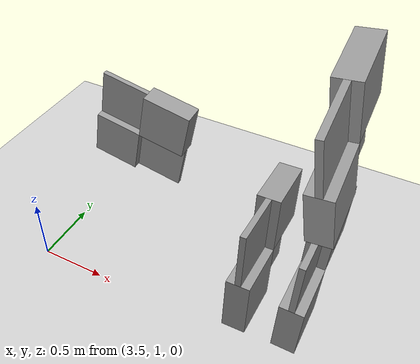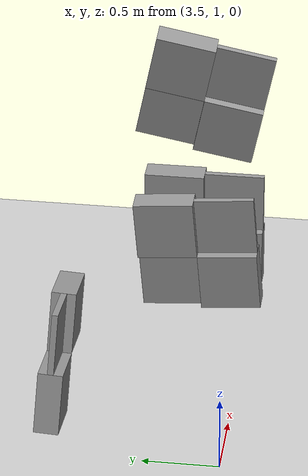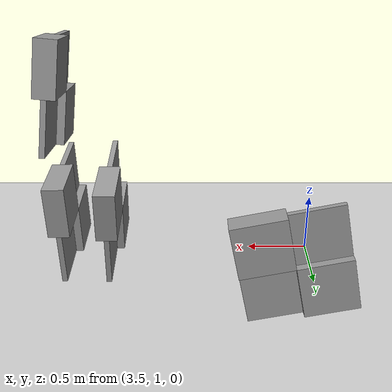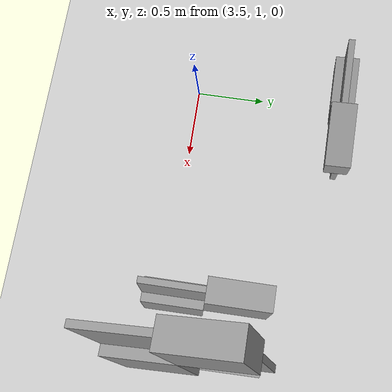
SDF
<sdf version="1.7">
 <world name="default">
  <model name="ground_plane">
   <static>1</static>
   <link name="link">
    <collision name="collision">
     <geometry><plane><normal>0 0 1</normal><size>100 100</size></plane></geometry>
     <surface>
      <contact><collide_bitmask>65535</collide_bitmask></contact>
      <friction><ode><mu>100</mu><mu2>50</mu2></ode></friction>
     </surface>
    </collision>
    <visual name="visual">
     <cast_shadows>0</cast_shadows>
     <geometry><plane><normal>0 0 1</normal><size>100 100</size></plane></geometry>
     <material>
      <script><uri>file://media/materials/scripts/gazebo.material</uri><name>Gazebo/Grey</name></script>
     </material>
    </visual>
   </link>
  </model>
  <model name="wall_slate_32">
   <static>1</static>
   <link name="link_0">
    <inertial><mass>1</mass></inertial>
    <gravity>0</gravity>
    <visual name="visual">
     <pose>0 0.2 0.2 0 -0 0</pose>
     <geometry><box><size>0.16 0.4 0.4</size></box></geometry>
     <material>
      <lighting>1</lighting>
      <script><uri>file://media/materials/scripts/gazebo.material</uri><name>Gazebo/Grey</name></script>
      <shader type="pixel"><normal_map>__default__</normal_map></shader>
      <ambient>0.3 0.3 0.3 1</ambient>
      <diffuse>0.7 0.7 0.7 1</diffuse>
      <specular>0.01 0.01 0.01 1</specular>
      <emissive>0 0 0 1</emissive>
     </material>
    </visual>
    <visual name="ModelPreview_0::link_0::visual_1">
     <pose>0 0.2 -0.2 0 -0 0</pose>
     <geometry><box><size>0.04 0.4 0.4</size></box></geometry>
     <material>
      <lighting>1</lighting>
      <script><uri>file://media/materials/scripts/gazebo.material</uri><name>Gazebo/Grey</name></script>
      <shader type="pixel"><normal_map>__default__</normal_map></shader>
      <ambient>0.3 0.3 0.3 1</ambient>
      <diffuse>0.7 0.7 0.7 1</diffuse>
      <specular>0.01 0.01 0.01 1</specular>
      <emissive>0 0 0 1</emissive>
     </material>
    </visual>
    <visual name="ModelPreview_0::link_0::visual_2">
     <pose>0 -0.2 0.2 0 -0 0</pose>
     <geometry><box><size>0.04 0.4 0.4</size></box></geometry>
     <material>
      <lighting>1</lighting>
      <script><uri>file://media/materials/scripts/gazebo.material</uri><name>Gazebo/Grey</name></script>
      <shader type="pixel"><normal_map>__default__</normal_map></shader>
      <ambient>0.3 0.3 0.3 1</ambient>
      <diffuse>0.7 0.7 0.7 1</diffuse>
      <specular>0.01 0.01 0.01 1</specular>
      <emissive>0 0 0 1</emissive>
     </material>
    </visual>
    <visual name="ModelPreview_0::link_0::visual_3">
     <pose>0 -0.2 -0.2 0 -0 0</pose>
     <geometry><box><size>0.16 0.4 0.4</size></box></geometry>
     <material>
      <lighting>1</lighting>
      <script><uri>file://media/materials/scripts/gazebo.material</uri><name>Gazebo/Grey</name></script>
      <shader type="pixel"><normal_map>__default__</normal_map></shader>
      <ambient>0.3 0.3 0.3 1</ambient>
      <diffuse>0.7 0.7 0.7 1</diffuse>
      <specular>0.01 0.01 0.01 1</specular>
      <emissive>0 0 0 1</emissive>
     </material>
    </visual>
    <collision name="collision_2">
     <pose>0 -0.2 0.2 0 -0 0</pose>
     <geometry><box><size>0.04 0.4 0.4</size></box></geometry>
     <surface>
      <friction>
       <ode><mu>1</mu><mu2>1</mu2><fdir1>0 0 0</fdir1><slip1>0</slip1><slip2>0</slip2></ode>
       <torsional>
        <coefficient>1</coefficient>
        <patch_radius>0</patch_radius>
        <surface_radius>0</surface_radius>
        <use_patch_radius>1</use_patch_radius>
        <ode><slip>0</slip></ode>
       </torsional>
      </friction>
      <bounce><restitution_coefficient>0</restitution_coefficient><threshold>1e+06</threshold></bounce>
      <contact>
       <collide_without_contact>0</collide_without_contact>
       <collide_without_contact_bitmask>1</collide_without_contact_bitmask>
       <collide_bitmask>1</collide_bitmask>
       <ode>
        <soft_cfm>0</soft_cfm>
        <soft_erp>0.2</soft_erp>
        <kp>1e+13</kp>
        <kd>1</kd>
        <max_vel>0.01</max_vel>
        <min_depth>0</min_depth>
       </ode>
       <bullet>
        <split_impulse>1</split_impulse>
        <split_impulse_penetration_threshold>-0.01</split_impulse_penetration_threshold>
        <soft_cfm>0</soft_cfm>
        <soft_erp>0.2</soft_erp>
        <kp>1e+13</kp>
        <kd>1</kd>
       </bullet>
      </contact>
     </surface>
    </collision>
    <collision name="collision_1">
     <pose>0 0.2 -0.2 0 -0 0</pose>
     <geometry><box><size>0.04 0.4 0.4</size></box></geometry>
     <surface>
      <friction>
       <ode><mu>1</mu><mu2>1</mu2><fdir1>0 0 0</fdir1><slip1>0</slip1><slip2>0</slip2></ode>
       <torsional>
        <coefficient>1</coefficient>
        <patch_radius>0</patch_radius>
        <surface_radius>0</surface_radius>
        <use_patch_radius>1</use_patch_radius>
        <ode><slip>0</slip></ode>
       </torsional>
      </friction>
      <bounce><restitution_coefficient>0</restitution_coefficient><threshold>1e+06</threshold></bounce>
      <contact>
       <collide_without_contact>0</collide_without_contact>
       <collide_without_contact_bitmask>1</collide_without_contact_bitmask>
       <collide_bitmask>1</collide_bitmask>
       <ode>
        <soft_cfm>0</soft_cfm>
        <soft_erp>0.2</soft_erp>
        <kp>1e+13</kp>
        <kd>1</kd>
        <max_vel>0.01</max_vel>
        <min_depth>0</min_depth>
       </ode>
       <bullet>
        <split_impulse>1</split_impulse>
        <split_impulse_penetration_threshold>-0.01</split_impulse_penetration_threshold>
        <soft_cfm>0</soft_cfm>
        <soft_erp>0.2</soft_erp>
        <kp>1e+13</kp>
        <kd>1</kd>
       </bullet>
      </contact>
     </surface>
    </collision>
    <collision name="collision_4">
     <pose>0 0.2 0.2 0 -0 0</pose>
     <geometry><box><size>0.16 0.4 0.4</size></box></geometry>
     <surface>
      <friction>
       <ode><mu>1</mu><mu2>1</mu2><fdir1>0 0 0</fdir1><slip1>0</slip1><slip2>0</slip2></ode>
       <torsional>
        <coefficient>1</coefficient>
        <patch_radius>0</patch_radius>
        <surface_radius>0</surface_radius>
        <use_patch_radius>1</use_patch_radius>
        <ode><slip>0</slip></ode>
       </torsional>
      </friction>
      <bounce><restitution_coefficient>0</restitution_coefficient><threshold>1e+06</threshold></bounce>
      <contact>
       <collide_without_contact>0</collide_without_contact>
       <collide_without_contact_bitmask>1</collide_without_contact_bitmask>
       <collide_bitmask>1</collide_bitmask>
       <ode>
        <soft_cfm>0</soft_cfm>
        <soft_erp>0.2</soft_erp>
        <kp>1e+13</kp>
        <kd>1</kd>
        <max_vel>0.01</max_vel>
        <min_depth>0</min_depth>
       </ode>
       <bullet>
        <split_impulse>1</split_impulse>
        <split_impulse_penetration_threshold>-0.01</split_impulse_penetration_threshold>
        <soft_cfm>0</soft_cfm>
        <soft_erp>0.2</soft_erp>
        <kp>1e+13</kp>
        <kd>1</kd>
       </bullet>
      </contact>
     </surface>
    </collision>
    <collision name="collision_3">
     <pose>0 -0.2 -0.2 0 -0 0</pose>
     <geometry><box><size>0.16 0.4 0.4</size></box></geometry>
     <surface>
      <friction>
       <ode><mu>1</mu><mu2>1</mu2><fdir1>0 0 0</fdir1><slip1>0</slip1><slip2>0</slip2></ode>
       <torsional>
        <coefficient>1</coefficient>
        <patch_radius>0</patch_radius>
        <surface_radius>0</surface_radius>
        <use_patch_radius>1</use_patch_radius>
        <ode><slip>0</slip></ode>
       </torsional>
      </friction>
      <bounce><restitution_coefficient>0</restitution_coefficient><threshold>1e+06</threshold></bounce>
      <contact>
       <collide_without_contact>0</collide_without_contact>
       <collide_without_contact_bitmask>1</collide_without_contact_bitmask>
       <collide_bitmask>1</collide_bitmask>
       <ode>
        <soft_cfm>0</soft_cfm>
        <soft_erp>0.2</soft_erp>
        <kp>1e+13</kp>
        <kd>1</kd>
        <max_vel>0.01</max_vel>
        <min_depth>0</min_depth>
       </ode>
       <bullet>
        <split_impulse>1</split_impulse>
        <split_impulse_penetration_threshold>-0.01</split_impulse_penetration_threshold>
        <soft_cfm>0</soft_cfm>
        <soft_erp>0.2</soft_erp>
        <kp>1e+13</kp>
        <kd>1</kd>
       </bullet>
      </contact>
     </surface>
    </collision>
   </link>
   <pose>3.77851 2.06618 0.6 -0.2 0.06 -1.5659</pose>
  </model>
  <model name="wall_slate_86">
   <static>1</static>
   <link name="link_0">
    <inertial><mass>1</mass></inertial>
    <gravity>0</gravity>
    <visual name="visual">
     <pose>0 0.2 0.2 0 -0 0</pose>
     <geometry><box><size>0.16 0.4 0.4</size></box></geometry>
     <material>
      <lighting>1</lighting>
      <script><uri>file://media/materials/scripts/gazebo.material</uri><name>Gazebo/Grey</name></script>
      <shader type="pixel"><normal_map>__default__</normal_map></shader>
      <ambient>0.3 0.3 0.3 1</ambient>
      <diffuse>0.7 0.7 0.7 1</diffuse>
      <specular>0.01 0.01 0.01 1</specular>
      <emissive>0 0 0 1</emissive>
     </material>
    </visual>
    <visual name="ModelPreview_0::link_0::visual_1">
     <pose>0 0.2 -0.2 0 -0 0</pose>
     <geometry><box><size>0.04 0.4 0.4</size></box></geometry>
     <material>
      <lighting>1</lighting>
      <script><uri>file://media/materials/scripts/gazebo.material</uri><name>Gazebo/Grey</name></script>
      <shader type="pixel"><normal_map>__default__</normal_map></shader>
      <ambient>0.3 0.3 0.3 1</ambient>
      <diffuse>0.7 0.7 0.7 1</diffuse>
      <specular>0.01 0.01 0.01 1</specular>
      <emissive>0 0 0 1</emissive>
     </material>
    </visual>
    <visual name="ModelPreview_0::link_0::visual_2">
     <pose>0 -0.2 0.2 0 -0 0</pose>
     <geometry><box><size>0.04 0.4 0.4</size></box></geometry>
     <material>
      <lighting>1</lighting>
      <script><uri>file://media/materials/scripts/gazebo.material</uri><name>Gazebo/Grey</name></script>
      <shader type="pixel"><normal_map>__default__</normal_map></shader>
      <ambient>0.3 0.3 0.3 1</ambient>
      <diffuse>0.7 0.7 0.7 1</diffuse>
      <specular>0.01 0.01 0.01 1</specular>
      <emissive>0 0 0 1</emissive>
     </material>
    </visual>
    <visual name="ModelPreview_0::link_0::visual_3">
     <pose>0 -0.2 -0.2 0 -0 0</pose>
     <geometry><box><size>0.16 0.4 0.4</size></box></geometry>
     <material>
      <lighting>1</lighting>
      <script><uri>file://media/materials/scripts/gazebo.material</uri><name>Gazebo/Grey</name></script>
      <shader type="pixel"><normal_map>__default__</normal_map></shader>
      <ambient>0.3 0.3 0.3 1</ambient>
      <diffuse>0.7 0.7 0.7 1</diffuse>
      <specular>0.01 0.01 0.01 1</specular>
      <emissive>0 0 0 1</emissive>
     </material>
    </visual>
    <collision name="collision_2">
     <pose>0 -0.2 0.2 0 -0 0</pose>
     <geometry><box><size>0.04 0.4 0.4</size></box></geometry>
     <surface>
      <friction>
       <ode><mu>1</mu><mu2>1</mu2><fdir1>0 0 0</fdir1><slip1>0</slip1><slip2>0</slip2></ode>
       <torsional>
        <coefficient>1</coefficient>
        <patch_radius>0</patch_radius>
        <surface_radius>0</surface_radius>
        <use_patch_radius>1</use_patch_radius>
        <ode><slip>0</slip></ode>
       </torsional>
      </friction>
      <bounce><restitution_coefficient>0</restitution_coefficient><threshold>1e+06</threshold></bounce>
      <contact>
       <collide_without_contact>0</collide_without_contact>
       <collide_without_contact_bitmask>1</collide_without_contact_bitmask>
       <collide_bitmask>1</collide_bitmask>
       <ode>
        <soft_cfm>0</soft_cfm>
        <soft_erp>0.2</soft_erp>
        <kp>1e+13</kp>
        <kd>1</kd>
        <max_vel>0.01</max_vel>
        <min_depth>0</min_depth>
       </ode>
       <bullet>
        <split_impulse>1</split_impulse>
        <split_impulse_penetration_threshold>-0.01</split_impulse_penetration_threshold>
        <soft_cfm>0</soft_cfm>
        <soft_erp>0.2</soft_erp>
        <kp>1e+13</kp>
        <kd>1</kd>
       </bullet>
      </contact>
     </surface>
    </collision>
    <collision name="collision_1">
     <pose>0 0.2 -0.2 0 -0 0</pose>
     <geometry><box><size>0.04 0.4 0.4</size></box></geometry>
     <surface>
      <friction>
       <ode><mu>1</mu><mu2>1</mu2><fdir1>0 0 0</fdir1><slip1>0</slip1><slip2>0</slip2></ode>
       <torsional>
        <coefficient>1</coefficient>
        <patch_radius>0</patch_radius>
        <surface_radius>0</surface_radius>
        <use_patch_radius>1</use_patch_radius>
        <ode><slip>0</slip></ode>
       </torsional>
      </friction>
      <bounce><restitution_coefficient>0</restitution_coefficient><threshold>1e+06</threshold></bounce>
      <contact>
       <collide_without_contact>0</collide_without_contact>
       <collide_without_contact_bitmask>1</collide_without_contact_bitmask>
       <collide_bitmask>1</collide_bitmask>
       <ode>
        <soft_cfm>0</soft_cfm>
        <soft_erp>0.2</soft_erp>
        <kp>1e+13</kp>
        <kd>1</kd>
        <max_vel>0.01</max_vel>
        <min_depth>0</min_depth>
       </ode>
       <bullet>
        <split_impulse>1</split_impulse>
        <split_impulse_penetration_threshold>-0.01</split_impulse_penetration_threshold>
        <soft_cfm>0</soft_cfm>
        <soft_erp>0.2</soft_erp>
        <kp>1e+13</kp>
        <kd>1</kd>
       </bullet>
      </contact>
     </surface>
    </collision>
    <collision name="collision_4">
     <pose>0 0.2 0.2 0 -0 0</pose>
     <geometry><box><size>0.16 0.4 0.4</size></box></geometry>
     <surface>
      <friction>
       <ode><mu>1</mu><mu2>1</mu2><fdir1>0 0 0</fdir1><slip1>0</slip1><slip2>0</slip2></ode>
       <torsional>
        <coefficient>1</coefficient>
        <patch_radius>0</patch_radius>
        <surface_radius>0</surface_radius>
        <use_patch_radius>1</use_patch_radius>
        <ode><slip>0</slip></ode>
       </torsional>
      </friction>
      <bounce><restitution_coefficient>0</restitution_coefficient><threshold>1e+06</threshold></bounce>
      <contact>
       <collide_without_contact>0</collide_without_contact>
       <collide_without_contact_bitmask>1</collide_without_contact_bitmask>
       <collide_bitmask>1</collide_bitmask>
       <ode>
        <soft_cfm>0</soft_cfm>
        <soft_erp>0.2</soft_erp>
        <kp>1e+13</kp>
        <kd>1</kd>
        <max_vel>0.01</max_vel>
        <min_depth>0</min_depth>
       </ode>
       <bullet>
        <split_impulse>1</split_impulse>
        <split_impulse_penetration_threshold>-0.01</split_impulse_penetration_threshold>
        <soft_cfm>0</soft_cfm>
        <soft_erp>0.2</soft_erp>
        <kp>1e+13</kp>
        <kd>1</kd>
       </bullet>
      </contact>
     </surface>
    </collision>
    <collision name="collision_3">
     <pose>0 -0.2 -0.2 0 -0 0</pose>
     <geometry><box><size>0.16 0.4 0.4</size></box></geometry>
     <surface>
      <friction>
       <ode><mu>1</mu><mu2>1</mu2><fdir1>0 0 0</fdir1><slip1>0</slip1><slip2>0</slip2></ode>
       <torsional>
        <coefficient>1</coefficient>
        <patch_radius>0</patch_radius>
        <surface_radius>0</surface_radius>
        <use_patch_radius>1</use_patch_radius>
        <ode><slip>0</slip></ode>
       </torsional>
      </friction>
      <bounce><restitution_coefficient>0</restitution_coefficient><threshold>1e+06</threshold></bounce>
      <contact>
       <collide_without_contact>0</collide_without_contact>
       <collide_without_contact_bitmask>1</collide_without_contact_bitmask>
       <collide_bitmask>1</collide_bitmask>
       <ode>
        <soft_cfm>0</soft_cfm>
        <soft_erp>0.2</soft_erp>
        <kp>1e+13</kp>
        <kd>1</kd>
        <max_vel>0.01</max_vel>
        <min_depth>0</min_depth>
       </ode>
       <bullet>
        <split_impulse>1</split_impulse>
        <split_impulse_penetration_threshold>-0.01</split_impulse_penetration_threshold>
        <soft_cfm>0</soft_cfm>
        <soft_erp>0.2</soft_erp>
        <kp>1e+13</kp>
        <kd>1</kd>
       </bullet>
      </contact>
     </surface>
    </collision>
   </link>
   <pose>5.1285 1.34118 0.6 -0.08 -0.02 0.0049</pose>
  </model>
  <model name="wall_slate_88">
   <static>1</static>
   <link name="link_0">
    <inertial><mass>1</mass></inertial>
    <gravity>0</gravity>
    <visual name="visual">
     <pose>0 0.2 0.2 0 -0 0</pose>
     <geometry><box><size>0.16 0.4 0.4</size></box></geometry>
     <material>
      <lighting>1</lighting>
      <script><uri>file://media/materials/scripts/gazebo.material</uri><name>Gazebo/Grey</name></script>
      <shader type="pixel"><normal_map>__default__</normal_map></shader>
      <ambient>0.3 0.3 0.3 1</ambient>
      <diffuse>0.7 0.7 0.7 1</diffuse>
      <specular>0.01 0.01 0.01 1</specular>
      <emissive>0 0 0 1</emissive>
     </material>
    </visual>
    <visual name="ModelPreview_0::link_0::visual_1">
     <pose>0 0.2 -0.2 0 -0 0</pose>
     <geometry><box><size>0.04 0.4 0.4</size></box></geometry>
     <material>
      <lighting>1</lighting>
      <script><uri>file://media/materials/scripts/gazebo.material</uri><name>Gazebo/Grey</name></script>
      <shader type="pixel"><normal_map>__default__</normal_map></shader>
      <ambient>0.3 0.3 0.3 1</ambient>
      <diffuse>0.7 0.7 0.7 1</diffuse>
      <specular>0.01 0.01 0.01 1</specular>
      <emissive>0 0 0 1</emissive>
     </material>
    </visual>
    <visual name="ModelPreview_0::link_0::visual_2">
     <pose>0 -0.2 0.2 0 -0 0</pose>
     <geometry><box><size>0.04 0.4 0.4</size></box></geometry>
     <material>
      <lighting>1</lighting>
      <script><uri>file://media/materials/scripts/gazebo.material</uri><name>Gazebo/Grey</name></script>
      <shader type="pixel"><normal_map>__default__</normal_map></shader>
      <ambient>0.3 0.3 0.3 1</ambient>
      <diffuse>0.7 0.7 0.7 1</diffuse>
      <specular>0.01 0.01 0.01 1</specular>
      <emissive>0 0 0 1</emissive>
     </material>
    </visual>
    <visual name="ModelPreview_0::link_0::visual_3">
     <pose>0 -0.2 -0.2 0 -0 0</pose>
     <geometry><box><size>0.16 0.4 0.4</size></box></geometry>
     <material>
      <lighting>1</lighting>
      <script><uri>file://media/materials/scripts/gazebo.material</uri><name>Gazebo/Grey</name></script>
      <shader type="pixel"><normal_map>__default__</normal_map></shader>
      <ambient>0.3 0.3 0.3 1</ambient>
      <diffuse>0.7 0.7 0.7 1</diffuse>
      <specular>0.01 0.01 0.01 1</specular>
      <emissive>0 0 0 1</emissive>
     </material>
    </visual>
    <collision name="collision_2">
     <pose>0 -0.2 0.2 0 -0 0</pose>
     <geometry><box><size>0.04 0.4 0.4</size></box></geometry>
     <surface>
      <friction>
       <ode><mu>1</mu><mu2>1</mu2><fdir1>0 0 0</fdir1><slip1>0</slip1><slip2>0</slip2></ode>
       <torsional>
        <coefficient>1</coefficient>
        <patch_radius>0</patch_radius>
        <surface_radius>0</surface_radius>
        <use_patch_radius>1</use_patch_radius>
        <ode><slip>0</slip></ode>
       </torsional>
      </friction>
      <bounce><restitution_coefficient>0</restitution_coefficient><threshold>1e+06</threshold></bounce>
      <contact>
       <collide_without_contact>0</collide_without_contact>
       <collide_without_contact_bitmask>1</collide_without_contact_bitmask>
       <collide_bitmask>1</collide_bitmask>
       <ode>
        <soft_cfm>0</soft_cfm>
        <soft_erp>0.2</soft_erp>
        <kp>1e+13</kp>
        <kd>1</kd>
        <max_vel>0.01</max_vel>
        <min_depth>0</min_depth>
       </ode>
       <bullet>
        <split_impulse>1</split_impulse>
        <split_impulse_penetration_threshold>-0.01</split_impulse_penetration_threshold>
        <soft_cfm>0</soft_cfm>
        <soft_erp>0.2</soft_erp>
        <kp>1e+13</kp>
        <kd>1</kd>
       </bullet>
      </contact>
     </surface>
    </collision>
    <collision name="collision_1">
     <pose>0 0.2 -0.2 0 -0 0</pose>
     <geometry><box><size>0.04 0.4 0.4</size></box></geometry>
     <surface>
      <friction>
       <ode><mu>1</mu><mu2>1</mu2><fdir1>0 0 0</fdir1><slip1>0</slip1><slip2>0</slip2></ode>
       <torsional>
        <coefficient>1</coefficient>
        <patch_radius>0</patch_radius>
        <surface_radius>0</surface_radius>
        <use_patch_radius>1</use_patch_radius>
        <ode><slip>0</slip></ode>
       </torsional>
      </friction>
      <bounce><restitution_coefficient>0</restitution_coefficient><threshold>1e+06</threshold></bounce>
      <contact>
       <collide_without_contact>0</collide_without_contact>
       <collide_without_contact_bitmask>1</collide_without_contact_bitmask>
       <collide_bitmask>1</collide_bitmask>
       <ode>
        <soft_cfm>0</soft_cfm>
        <soft_erp>0.2</soft_erp>
        <kp>1e+13</kp>
        <kd>1</kd>
        <max_vel>0.01</max_vel>
        <min_depth>0</min_depth>
       </ode>
       <bullet>
        <split_impulse>1</split_impulse>
        <split_impulse_penetration_threshold>-0.01</split_impulse_penetration_threshold>
        <soft_cfm>0</soft_cfm>
        <soft_erp>0.2</soft_erp>
        <kp>1e+13</kp>
        <kd>1</kd>
       </bullet>
      </contact>
     </surface>
    </collision>
    <collision name="collision_4">
     <pose>0 0.2 0.2 0 -0 0</pose>
     <geometry><box><size>0.16 0.4 0.4</size></box></geometry>
     <surface>
      <friction>
       <ode><mu>1</mu><mu2>1</mu2><fdir1>0 0 0</fdir1><slip1>0</slip1><slip2>0</slip2></ode>
       <torsional>
        <coefficient>1</coefficient>
        <patch_radius>0</patch_radius>
        <surface_radius>0</surface_radius>
        <use_patch_radius>1</use_patch_radius>
        <ode><slip>0</slip></ode>
       </torsional>
      </friction>
      <bounce><restitution_coefficient>0</restitution_coefficient><threshold>1e+06</threshold></bounce>
      <contact>
       <collide_without_contact>0</collide_without_contact>
       <collide_without_contact_bitmask>1</collide_without_contact_bitmask>
       <collide_bitmask>1</collide_bitmask>
       <ode>
        <soft_cfm>0</soft_cfm>
        <soft_erp>0.2</soft_erp>
        <kp>1e+13</kp>
        <kd>1</kd>
        <max_vel>0.01</max_vel>
        <min_depth>0</min_depth>
       </ode>
       <bullet>
        <split_impulse>1</split_impulse>
        <split_impulse_penetration_threshold>-0.01</split_impulse_penetration_threshold>
        <soft_cfm>0</soft_cfm>
        <soft_erp>0.2</soft_erp>
        <kp>1e+13</kp>
        <kd>1</kd>
       </bullet>
      </contact>
     </surface>
    </collision>
    <collision name="collision_3">
     <pose>0 -0.2 -0.2 0 -0 0</pose>
     <geometry><box><size>0.16 0.4 0.4</size></box></geometry>
     <surface>
      <friction>
       <ode><mu>1</mu><mu2>1</mu2><fdir1>0 0 0</fdir1><slip1>0</slip1><slip2>0</slip2></ode>
       <torsional>
        <coefficient>1</coefficient>
        <patch_radius>0</patch_radius>
        <surface_radius>0</surface_radius>
        <use_patch_radius>1</use_patch_radius>
        <ode><slip>0</slip></ode>
       </torsional>
      </friction>
      <bounce><restitution_coefficient>0</restitution_coefficient><threshold>1e+06</threshold></bounce>
      <contact>
       <collide_without_contact>0</collide_without_contact>
       <collide_without_contact_bitmask>1</collide_without_contact_bitmask>
       <collide_bitmask>1</collide_bitmask>
       <ode>
        <soft_cfm>0</soft_cfm>
        <soft_erp>0.2</soft_erp>
        <kp>1e+13</kp>
        <kd>1</kd>
        <max_vel>0.01</max_vel>
        <min_depth>0</min_depth>
       </ode>
       <bullet>
        <split_impulse>1</split_impulse>
        <split_impulse_penetration_threshold>-0.01</split_impulse_penetration_threshold>
        <soft_cfm>0</soft_cfm>
        <soft_erp>0.2</soft_erp>
        <kp>1e+13</kp>
        <kd>1</kd>
       </bullet>
      </contact>
     </surface>
    </collision>
   </link>
   <pose>5.4785 1.34118 1.6 0.2 -0.1 0.0049</pose>
  </model>
  <model name="wall_slate_100">
   <static>1</static>
   <link name="link_0">
    <inertial><mass>1</mass></inertial>
    <gravity>0</gravity>
    <visual name="visual">
     <pose>0 0.2 0.2 0 -0 0</pose>
     <geometry><box><size>0.16 0.4 0.4</size></box></geometry>
     <material>
      <lighting>1</lighting>
      <script><uri>file://media/materials/scripts/gazebo.material</uri><name>Gazebo/Grey</name></script>
      <shader type="pixel"><normal_map>__default__</normal_map></shader>
      <ambient>0.3 0.3 0.3 1</ambient>
      <diffuse>0.7 0.7 0.7 1</diffuse>
      <specular>0.01 0.01 0.01 1</specular>
      <emissive>0 0 0 1</emissive>
     </material>
    </visual>
    <visual name="ModelPreview_0::link_0::visual_1">
     <pose>0 0.2 -0.2 0 -0 0</pose>
     <geometry><box><size>0.04 0.4 0.4</size></box></geometry>
     <material>
      <lighting>1</lighting>
      <script><uri>file://media/materials/scripts/gazebo.material</uri><name>Gazebo/Grey</name></script>
      <shader type="pixel"><normal_map>__default__</normal_map></shader>
      <ambient>0.3 0.3 0.3 1</ambient>
      <diffuse>0.7 0.7 0.7 1</diffuse>
      <specular>0.01 0.01 0.01 1</specular>
      <emissive>0 0 0 1</emissive>
     </material>
    </visual>
    <visual name="ModelPreview_0::link_0::visual_2">
     <pose>0 -0.2 0.2 0 -0 0</pose>
     <geometry><box><size>0.04 0.4 0.4</size></box></geometry>
     <material>
      <lighting>1</lighting>
      <script><uri>file://media/materials/scripts/gazebo.material</uri><name>Gazebo/Grey</name></script>
      <shader type="pixel"><normal_map>__default__</normal_map></shader>
      <ambient>0.3 0.3 0.3 1</ambient>
      <diffuse>0.7 0.7 0.7 1</diffuse>
      <specular>0.01 0.01 0.01 1</specular>
      <emissive>0 0 0 1</emissive>
     </material>
    </visual>
    <visual name="ModelPreview_0::link_0::visual_3">
     <pose>0 -0.2 -0.2 0 -0 0</pose>
     <geometry><box><size>0.16 0.4 0.4</size></box></geometry>
     <material>
      <lighting>1</lighting>
      <script><uri>file://media/materials/scripts/gazebo.material</uri><name>Gazebo/Grey</name></script>
      <shader type="pixel"><normal_map>__default__</normal_map></shader>
      <ambient>0.3 0.3 0.3 1</ambient>
      <diffuse>0.7 0.7 0.7 1</diffuse>
      <specular>0.01 0.01 0.01 1</specular>
      <emissive>0 0 0 1</emissive>
     </material>
    </visual>
    <collision name="collision_2">
     <pose>0 -0.2 0.2 0 -0 0</pose>
     <geometry><box><size>0.04 0.4 0.4</size></box></geometry>
     <surface>
      <friction>
       <ode><mu>1</mu><mu2>1</mu2><fdir1>0 0 0</fdir1><slip1>0</slip1><slip2>0</slip2></ode>
       <torsional>
        <coefficient>1</coefficient>
        <patch_radius>0</patch_radius>
        <surface_radius>0</surface_radius>
        <use_patch_radius>1</use_patch_radius>
        <ode><slip>0</slip></ode>
       </torsional>
      </friction>
      <bounce><restitution_coefficient>0</restitution_coefficient><threshold>1e+06</threshold></bounce>
      <contact>
       <collide_without_contact>0</collide_without_contact>
       <collide_without_contact_bitmask>1</collide_without_contact_bitmask>
       <collide_bitmask>1</collide_bitmask>
       <ode>
        <soft_cfm>0</soft_cfm>
        <soft_erp>0.2</soft_erp>
        <kp>1e+13</kp>
        <kd>1</kd>
        <max_vel>0.01</max_vel>
        <min_depth>0</min_depth>
       </ode>
       <bullet>
        <split_impulse>1</split_impulse>
        <split_impulse_penetration_threshold>-0.01</split_impulse_penetration_threshold>
        <soft_cfm>0</soft_cfm>
        <soft_erp>0.2</soft_erp>
        <kp>1e+13</kp>
        <kd>1</kd>
       </bullet>
      </contact>
     </surface>
    </collision>
    <collision name="collision_1">
     <pose>0 0.2 -0.2 0 -0 0</pose>
     <geometry><box><size>0.04 0.4 0.4</size></box></geometry>
     <surface>
      <friction>
       <ode><mu>1</mu><mu2>1</mu2><fdir1>0 0 0</fdir1><slip1>0</slip1><slip2>0</slip2></ode>
       <torsional>
        <coefficient>1</coefficient>
        <patch_radius>0</patch_radius>
        <surface_radius>0</surface_radius>
        <use_patch_radius>1</use_patch_radius>
        <ode><slip>0</slip></ode>
       </torsional>
      </friction>
      <bounce><restitution_coefficient>0</restitution_coefficient><threshold>1e+06</threshold></bounce>
      <contact>
       <collide_without_contact>0</collide_without_contact>
       <collide_without_contact_bitmask>1</collide_without_contact_bitmask>
       <collide_bitmask>1</collide_bitmask>
       <ode>
        <soft_cfm>0</soft_cfm>
        <soft_erp>0.2</soft_erp>
        <kp>1e+13</kp>
        <kd>1</kd>
        <max_vel>0.01</max_vel>
        <min_depth>0</min_depth>
       </ode>
       <bullet>
        <split_impulse>1</split_impulse>
        <split_impulse_penetration_threshold>-0.01</split_impulse_penetration_threshold>
        <soft_cfm>0</soft_cfm>
        <soft_erp>0.2</soft_erp>
        <kp>1e+13</kp>
        <kd>1</kd>
       </bullet>
      </contact>
     </surface>
    </collision>
    <collision name="collision_4">
     <pose>0 0.2 0.2 0 -0 0</pose>
     <geometry><box><size>0.16 0.4 0.4</size></box></geometry>
     <surface>
      <friction>
       <ode><mu>1</mu><mu2>1</mu2><fdir1>0 0 0</fdir1><slip1>0</slip1><slip2>0</slip2></ode>
       <torsional>
        <coefficient>1</coefficient>
        <patch_radius>0</patch_radius>
        <surface_radius>0</surface_radius>
        <use_patch_radius>1</use_patch_radius>
        <ode><slip>0</slip></ode>
       </torsional>
      </friction>
      <bounce><restitution_coefficient>0</restitution_coefficient><threshold>1e+06</threshold></bounce>
      <contact>
       <collide_without_contact>0</collide_without_contact>
       <collide_without_contact_bitmask>1</collide_without_contact_bitmask>
       <collide_bitmask>1</collide_bitmask>
       <ode>
        <soft_cfm>0</soft_cfm>
        <soft_erp>0.2</soft_erp>
        <kp>1e+13</kp>
        <kd>1</kd>
        <max_vel>0.01</max_vel>
        <min_depth>0</min_depth>
       </ode>
       <bullet>
        <split_impulse>1</split_impulse>
        <split_impulse_penetration_threshold>-0.01</split_impulse_penetration_threshold>
        <soft_cfm>0</soft_cfm>
        <soft_erp>0.2</soft_erp>
        <kp>1e+13</kp>
        <kd>1</kd>
       </bullet>
      </contact>
     </surface>
    </collision>
    <collision name="collision_3">
     <pose>0 -0.2 -0.2 0 -0 0</pose>
     <geometry><box><size>0.16 0.4 0.4</size></box></geometry>
     <surface>
      <friction>
       <ode><mu>1</mu><mu2>1</mu2><fdir1>0 0 0</fdir1><slip1>0</slip1><slip2>0</slip2></ode>
       <torsional>
        <coefficient>1</coefficient>
        <patch_radius>0</patch_radius>
        <surface_radius>0</surface_radius>
        <use_patch_radius>1</use_patch_radius>
        <ode><slip>0</slip></ode>
       </torsional>
      </friction>
      <bounce><restitution_coefficient>0</restitution_coefficient><threshold>1e+06</threshold></bounce>
      <contact>
       <collide_without_contact>0</collide_without_contact>
       <collide_without_contact_bitmask>1</collide_without_contact_bitmask>
       <collide_bitmask>1</collide_bitmask>
       <ode>
        <soft_cfm>0</soft_cfm>
        <soft_erp>0.2</soft_erp>
        <kp>1e+13</kp>
        <kd>1</kd>
        <max_vel>0.01</max_vel>
        <min_depth>0</min_depth>
       </ode>
       <bullet>
        <split_impulse>1</split_impulse>
        <split_impulse_penetration_threshold>-0.01</split_impulse_penetration_threshold>
        <soft_cfm>0</soft_cfm>
        <soft_erp>0.2</soft_erp>
        <kp>1e+13</kp>
        <kd>1</kd>
       </bullet>
      </contact>
     </surface>
    </collision>
   </link>
   <pose>5.4785 1.34118 0.6 0 0.02 0.0049</pose>
  </model>
 </world>
</sdf>
